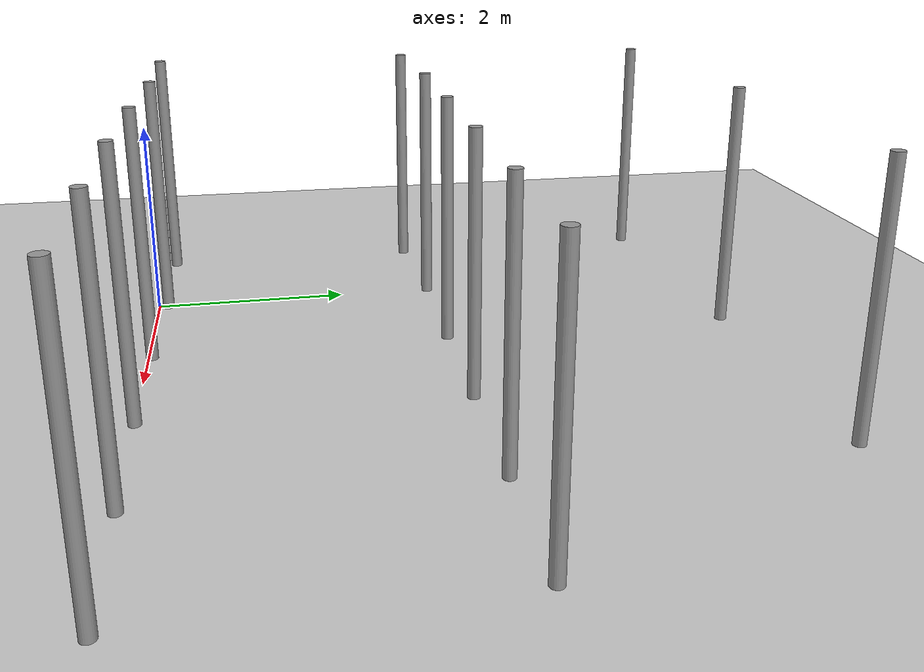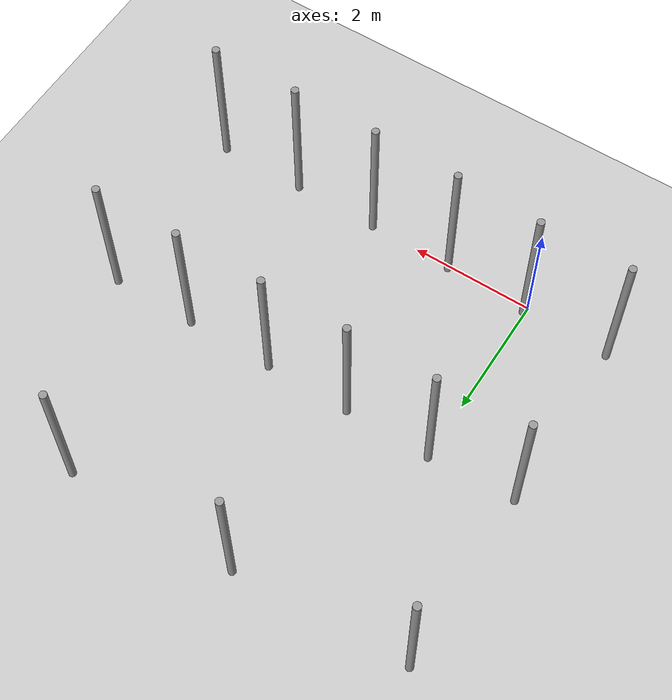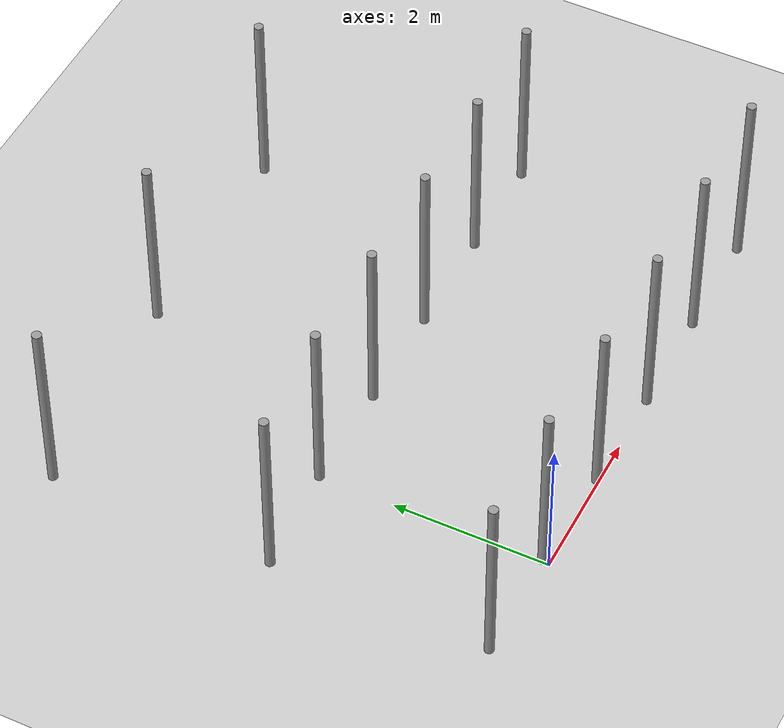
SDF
<sdf version="1.6">
 <world name="default">
  <model name="ground_plane">
   <static>1</static>
   <link name="link">
    <collision name="collision">
     <geometry><plane><normal>0 0 1</normal><size>100 100</size></plane></geometry>
     <surface><friction><ode><mu>100</mu><mu2>50</mu2></ode></friction></surface>
    </collision>
    <visual name="visual">
     <cast_shadows>0</cast_shadows>
     <geometry><plane><normal>0 0 1</normal><size>100 100</size></plane></geometry>
     <material>
      <script><uri>file://media/materials/scripts/gazebo.material</uri><name>Gazebo/Grey</name></script>
     </material>
    </visual>
   </link>
  </model>
  <model name="pole_8">
   <link name="link_0">
    <inertial>
     <mass>0.0364582</mass>
     <inertia>
      <ixx>0.00312124</ixx>
      <ixy>0</ixy>
      <ixz>0</ixz>
      <iyy>0.00312124</iyy>
      <iyz>0</iyz>
      <izz>0.00016615</izz>
     </inertia>
    </inertial>
    <visual name="visual">
     <geometry><cylinder><radius>0.06</radius><length>2.5</length></cylinder></geometry>
     <material>
      <lighting>1</lighting>
      <script><uri>file://media/materials/scripts/gazebo.material</uri><name>Gazebo/Grey</name></script>
      <ambient>0.3 0.3 0.3 1</ambient>
      <diffuse>0.7 0.7 0.7 1</diffuse>
      <specular>0.01 0.01 0.01 1</specular>
      <emissive>0 0 0 1</emissive>
      <shader type="vertex"><normal_map>__default__</normal_map></shader>
     </material>
    </visual>
    <collision name="collision">
     <geometry><cylinder><radius>0.06</radius><length>2.5</length></cylinder></geometry>
     <surface>
      <friction>
       <ode><mu>1</mu><mu2>1</mu2><fdir1>0 0 0</fdir1><slip1>0</slip1><slip2>0</slip2></ode>
       <torsional>
        <coefficient>1</coefficient>
        <patch_radius>0</patch_radius>
        <surface_radius>0</surface_radius>
        <use_patch_radius>1</use_patch_radius>
        <ode><slip>0</slip></ode>
       </torsional>
      </friction>
      <bounce><restitution_coefficient>0</restitution_coefficient><threshold>1e+06</threshold></bounce>
      <contact>
       <collide_without_contact>0</collide_without_contact>
       <collide_without_contact_bitmask>1</collide_without_contact_bitmask>
       <collide_bitmask>1</collide_bitmask>
       <ode>
        <soft_cfm>0</soft_cfm>
        <soft_erp>0.2</soft_erp>
        <kp>1e+13</kp>
        <kd>1</kd>
        <max_vel>0.01</max_vel>
        <min_depth>0</min_depth>
       </ode>
       <bullet>
        <split_impulse>1</split_impulse>
        <split_impulse_penetration_threshold>-0.01</split_impulse_penetration_threshold>
        <soft_cfm>0</soft_cfm>
        <soft_erp>0.2</soft_erp>
        <kp>1e+13</kp>
        <kd>1</kd>
       </bullet>
      </contact>
     </surface>
    </collision>
   </link>
   <static>0</static>
   <pose>1.40879 0.036092 1.24999 1e-06 -3e-06 -0.062165</pose>
  </model>
  <model name="pole_9">
   <link name="link_0">
    <inertial>
     <mass>0.0364582</mass>
     <inertia>
      <ixx>0.00312124</ixx>
      <ixy>0</ixy>
      <ixz>0</ixz>
      <iyy>0.00312124</iyy>
      <iyz>0</iyz>
      <izz>0.00016615</izz>
     </inertia>
    </inertial>
    <visual name="visual">
     <geometry><cylinder><radius>0.06</radius><length>2.5</length></cylinder></geometry>
     <material>
      <lighting>1</lighting>
      <script><uri>file://media/materials/scripts/gazebo.material</uri><name>Gazebo/Grey</name></script>
      <ambient>0.3 0.3 0.3 1</ambient>
      <diffuse>0.7 0.7 0.7 1</diffuse>
      <specular>0.01 0.01 0.01 1</specular>
      <emissive>0 0 0 1</emissive>
      <shader type="vertex"><normal_map>__default__</normal_map></shader>
     </material>
    </visual>
    <collision name="collision">
     <geometry><cylinder><radius>0.06</radius><length>2.5</length></cylinder></geometry>
     <surface>
      <friction>
       <ode><mu>1</mu><mu2>1</mu2><fdir1>0 0 0</fdir1><slip1>0</slip1><slip2>0</slip2></ode>
       <torsional>
        <coefficient>1</coefficient>
        <patch_radius>0</patch_radius>
        <surface_radius>0</surface_radius>
        <use_patch_radius>1</use_patch_radius>
        <ode><slip>0</slip></ode>
       </torsional>
      </friction>
      <bounce><restitution_coefficient>0</restitution_coefficient><threshold>1e+06</threshold></bounce>
      <contact>
       <collide_without_contact>0</collide_without_contact>
       <collide_without_contact_bitmask>1</collide_without_contact_bitmask>
       <collide_bitmask>1</collide_bitmask>
       <ode>
        <soft_cfm>0</soft_cfm>
        <soft_erp>0.2</soft_erp>
        <kp>1e+13</kp>
        <kd>1</kd>
        <max_vel>0.01</max_vel>
        <min_depth>0</min_depth>
       </ode>
       <bullet>
        <split_impulse>1</split_impulse>
        <split_impulse_penetration_threshold>-0.01</split_impulse_penetration_threshold>
        <soft_cfm>0</soft_cfm>
        <soft_erp>0.2</soft_erp>
        <kp>1e+13</kp>
        <kd>1</kd>
       </bullet>
      </contact>
     </surface>
    </collision>
   </link>
   <static>0</static>
   <pose>2.80864 0.005801 1.25 -1e-06 1e-06 -0.08446</pose>
  </model>
  <model name="pole_10">
   <link name="link_0">
    <inertial>
     <mass>0.0364582</mass>
     <inertia>
      <ixx>0.00312124</ixx>
      <ixy>0</ixy>
      <ixz>0</ixz>
      <iyy>0.00312124</iyy>
      <iyz>0</iyz>
      <izz>0.00016615</izz>
     </inertia>
    </inertial>
    <visual name="visual">
     <geometry><cylinder><radius>0.06</radius><length>2.5</length></cylinder></geometry>
     <material>
      <lighting>1</lighting>
      <script><uri>file://media/materials/scripts/gazebo.material</uri><name>Gazebo/Grey</name></script>
      <ambient>0.3 0.3 0.3 1</ambient>
      <diffuse>0.7 0.7 0.7 1</diffuse>
      <specular>0.01 0.01 0.01 1</specular>
      <emissive>0 0 0 1</emissive>
      <shader type="vertex"><normal_map>__default__</normal_map></shader>
     </material>
    </visual>
    <collision name="collision">
     <geometry><cylinder><radius>0.06</radius><length>2.5</length></cylinder></geometry>
     <surface>
      <friction>
       <ode><mu>1</mu><mu2>1</mu2><fdir1>0 0 0</fdir1><slip1>0</slip1><slip2>0</slip2></ode>
       <torsional>
        <coefficient>1</coefficient>
        <patch_radius>0</patch_radius>
        <surface_radius>0</surface_radius>
        <use_patch_radius>1</use_patch_radius>
        <ode><slip>0</slip></ode>
       </torsional>
      </friction>
      <bounce><restitution_coefficient>0</restitution_coefficient><threshold>1e+06</threshold></bounce>
      <contact>
       <collide_without_contact>0</collide_without_contact>
       <collide_without_contact_bitmask>1</collide_without_contact_bitmask>
       <collide_bitmask>1</collide_bitmask>
       <ode>
        <soft_cfm>0</soft_cfm>
        <soft_erp>0.2</soft_erp>
        <kp>1e+13</kp>
        <kd>1</kd>
        <max_vel>0.01</max_vel>
        <min_depth>0</min_depth>
       </ode>
       <bullet>
        <split_impulse>1</split_impulse>
        <split_impulse_penetration_threshold>-0.01</split_impulse_penetration_threshold>
        <soft_cfm>0</soft_cfm>
        <soft_erp>0.2</soft_erp>
        <kp>1e+13</kp>
        <kd>1</kd>
       </bullet>
      </contact>
     </surface>
    </collision>
   </link>
   <static>0</static>
   <pose>4.20447 0.005369 1.25 -0 -1e-06 -0.061855</pose>
  </model>
  <model name="pole_11">
   <link name="link_0">
    <inertial>
     <mass>0.0364582</mass>
     <inertia>
      <ixx>0.00312124</ixx>
      <ixy>0</ixy>
      <ixz>0</ixz>
      <iyy>0.00312124</iyy>
      <iyz>0</iyz>
      <izz>0.00016615</izz>
     </inertia>
    </inertial>
    <visual name="visual">
     <geometry><cylinder><radius>0.06</radius><length>2.5</length></cylinder></geometry>
     <material>
      <lighting>1</lighting>
      <script><uri>file://media/materials/scripts/gazebo.material</uri><name>Gazebo/Grey</name></script>
      <ambient>0.3 0.3 0.3 1</ambient>
      <diffuse>0.7 0.7 0.7 1</diffuse>
      <specular>0.01 0.01 0.01 1</specular>
      <emissive>0 0 0 1</emissive>
      <shader type="vertex"><normal_map>__default__</normal_map></shader>
     </material>
    </visual>
    <collision name="collision">
     <geometry><cylinder><radius>0.06</radius><length>2.5</length></cylinder></geometry>
     <surface>
      <friction>
       <ode><mu>1</mu><mu2>1</mu2><fdir1>0 0 0</fdir1><slip1>0</slip1><slip2>0</slip2></ode>
       <torsional>
        <coefficient>1</coefficient>
        <patch_radius>0</patch_radius>
        <surface_radius>0</surface_radius>
        <use_patch_radius>1</use_patch_radius>
        <ode><slip>0</slip></ode>
       </torsional>
      </friction>
      <bounce><restitution_coefficient>0</restitution_coefficient><threshold>1e+06</threshold></bounce>
      <contact>
       <collide_without_contact>0</collide_without_contact>
       <collide_without_contact_bitmask>1</collide_without_contact_bitmask>
       <collide_bitmask>1</collide_bitmask>
       <ode>
        <soft_cfm>0</soft_cfm>
        <soft_erp>0.2</soft_erp>
        <kp>1e+13</kp>
        <kd>1</kd>
        <max_vel>0.01</max_vel>
        <min_depth>0</min_depth>
       </ode>
       <bullet>
        <split_impulse>1</split_impulse>
        <split_impulse_penetration_threshold>-0.01</split_impulse_penetration_threshold>
        <soft_cfm>0</soft_cfm>
        <soft_erp>0.2</soft_erp>
        <kp>1e+13</kp>
        <kd>1</kd>
       </bullet>
      </contact>
     </surface>
    </collision>
   </link>
   <static>0</static>
   <pose>5.61686 0.005453 1.24999 0 0 -0.070687</pose>
  </model>
  <model name="pole_11_clone">
   <link name="link_0">
    <inertial>
     <mass>0.0364582</mass>
     <inertia>
      <ixx>0.00312124</ixx>
      <ixy>0</ixy>
      <ixz>0</ixz>
      <iyy>0.00312124</iyy>
      <iyz>0</iyz>
      <izz>0.00016615</izz>
     </inertia>
    </inertial>
    <visual name="visual">
     <geometry><cylinder><radius>0.06</radius><length>2.5</length></cylinder></geometry>
     <material>
      <lighting>1</lighting>
      <script><uri>file://media/materials/scripts/gazebo.material</uri><name>Gazebo/Grey</name></script>
      <ambient>0.3 0.3 0.3 1</ambient>
      <diffuse>0.7 0.7 0.7 1</diffuse>
      <specular>0.01 0.01 0.01 1</specular>
      <emissive>0 0 0 1</emissive>
      <shader type="vertex"><normal_map>__default__</normal_map></shader>
     </material>
    </visual>
    <collision name="collision">
     <geometry><cylinder><radius>0.06</radius><length>2.5</length></cylinder></geometry>
     <surface>
      <friction>
       <ode><mu>1</mu><mu2>1</mu2><fdir1>0 0 0</fdir1><slip1>0</slip1><slip2>0</slip2></ode>
       <torsional>
        <coefficient>1</coefficient>
        <patch_radius>0</patch_radius>
        <surface_radius>0</surface_radius>
        <use_patch_radius>1</use_patch_radius>
        <ode><slip>0</slip></ode>
       </torsional>
      </friction>
      <bounce><restitution_coefficient>0</restitution_coefficient><threshold>1e+06</threshold></bounce>
      <contact>
       <collide_without_contact>0</collide_without_contact>
       <collide_without_contact_bitmask>1</collide_without_contact_bitmask>
       <collide_bitmask>1</collide_bitmask>
       <ode>
        <soft_cfm>0</soft_cfm>
        <soft_erp>0.2</soft_erp>
        <kp>1e+13</kp>
        <kd>1</kd>
        <max_vel>0.01</max_vel>
        <min_depth>0</min_depth>
       </ode>
       <bullet>
        <split_impulse>1</split_impulse>
        <split_impulse_penetration_threshold>-0.01</split_impulse_penetration_threshold>
        <soft_cfm>0</soft_cfm>
        <soft_erp>0.2</soft_erp>
        <kp>1e+13</kp>
        <kd>1</kd>
       </bullet>
      </contact>
     </surface>
    </collision>
   </link>
   <static>0</static>
   <pose>0.001297 2.98765 1.25 0 1e-06 -0.073133</pose>
  </model>
  <model name="pole_2">
   <link name="link_0">
    <inertial>
     <mass>0.0364582</mass>
     <inertia>
      <ixx>0.00312124</ixx>
      <ixy>0</ixy>
      <ixz>0</ixz>
      <iyy>0.00312124</iyy>
      <iyz>0</iyz>
      <izz>0.00016615</izz>
     </inertia>
    </inertial>
    <visual name="visual">
     <geometry><cylinder><radius>0.06</radius><length>2.5</length></cylinder></geometry>
     <material>
      <lighting>1</lighting>
      <script><uri>file://media/materials/scripts/gazebo.material</uri><name>Gazebo/Grey</name></script>
      <ambient>0.3 0.3 0.3 1</ambient>
      <diffuse>0.7 0.7 0.7 1</diffuse>
      <specular>0.01 0.01 0.01 1</specular>
      <emissive>0 0 0 1</emissive>
      <shader type="vertex"><normal_map>__default__</normal_map></shader>
     </material>
    </visual>
    <collision name="collision">
     <geometry><cylinder><radius>0.06</radius><length>2.5</length></cylinder></geometry>
     <surface>
      <friction>
       <ode><mu>1</mu><mu2>1</mu2><fdir1>0 0 0</fdir1><slip1>0</slip1><slip2>0</slip2></ode>
       <torsional>
        <coefficient>1</coefficient>
        <patch_radius>0</patch_radius>
        <surface_radius>0</surface_radius>
        <use_patch_radius>1</use_patch_radius>
        <ode><slip>0</slip></ode>
       </torsional>
      </friction>
      <bounce><restitution_coefficient>0</restitution_coefficient><threshold>1e+06</threshold></bounce>
      <contact>
       <collide_without_contact>0</collide_without_contact>
       <collide_without_contact_bitmask>1</collide_without_contact_bitmask>
       <collide_bitmask>1</collide_bitmask>
       <ode>
        <soft_cfm>0</soft_cfm>
        <soft_erp>0.2</soft_erp>
        <kp>1e+13</kp>
        <kd>1</kd>
        <max_vel>0.01</max_vel>
        <min_depth>0</min_depth>
       </ode>
       <bullet>
        <split_impulse>1</split_impulse>
        <split_impulse_penetration_threshold>-0.01</split_impulse_penetration_threshold>
        <soft_cfm>0</soft_cfm>
        <soft_erp>0.2</soft_erp>
        <kp>1e+13</kp>
        <kd>1</kd>
       </bullet>
      </contact>
     </surface>
    </collision>
   </link>
   <static>0</static>
   <pose>0.034803 0.098134 1.25 0 2e-06 0.003122</pose>
  </model>
  <model name="pole_3">
   <link name="link_0">
    <inertial>
     <mass>0.0364582</mass>
     <inertia>
      <ixx>0.00312124</ixx>
      <ixy>0</ixy>
      <ixz>0</ixz>
      <iyy>0.00312124</iyy>
      <iyz>0</iyz>
      <izz>0.00016615</izz>
     </inertia>
    </inertial>
    <visual name="visual">
     <geometry><cylinder><radius>0.06</radius><length>2.5</length></cylinder></geometry>
     <material>
      <lighting>1</lighting>
      <script><uri>file://media/materials/scripts/gazebo.material</uri><name>Gazebo/Grey</name></script>
      <ambient>0.3 0.3 0.3 1</ambient>
      <diffuse>0.7 0.7 0.7 1</diffuse>
      <specular>0.01 0.01 0.01 1</specular>
      <emissive>0 0 0 1</emissive>
      <shader type="vertex"><normal_map>__default__</normal_map></shader>
     </material>
    </visual>
    <collision name="collision">
     <geometry><cylinder><radius>0.06</radius><length>2.5</length></cylinder></geometry>
     <surface>
      <friction>
       <ode><mu>1</mu><mu2>1</mu2><fdir1>0 0 0</fdir1><slip1>0</slip1><slip2>0</slip2></ode>
       <torsional>
        <coefficient>1</coefficient>
        <patch_radius>0</patch_radius>
        <surface_radius>0</surface_radius>
        <use_patch_radius>1</use_patch_radius>
        <ode><slip>0</slip></ode>
       </torsional>
      </friction>
      <bounce><restitution_coefficient>0</restitution_coefficient><threshold>1e+06</threshold></bounce>
      <contact>
       <collide_without_contact>0</collide_without_contact>
       <collide_without_contact_bitmask>1</collide_without_contact_bitmask>
       <collide_bitmask>1</collide_bitmask>
       <ode>
        <soft_cfm>0</soft_cfm>
        <soft_erp>0.2</soft_erp>
        <kp>1e+13</kp>
        <kd>1</kd>
        <max_vel>0.01</max_vel>
        <min_depth>0</min_depth>
       </ode>
       <bullet>
        <split_impulse>1</split_impulse>
        <split_impulse_penetration_threshold>-0.01</split_impulse_penetration_threshold>
        <soft_cfm>0</soft_cfm>
        <soft_erp>0.2</soft_erp>
        <kp>1e+13</kp>
        <kd>1</kd>
       </bullet>
      </contact>
     </surface>
    </collision>
   </link>
   <static>0</static>
   <pose>1.40528 2.98526 1.25 -1e-06 -0 -0.058774</pose>
  </model>
  <model name="pole_5">
   <link name="link_0">
    <inertial>
     <mass>0.0364582</mass>
     <inertia>
      <ixx>0.00312124</ixx>
      <ixy>0</ixy>
      <ixz>0</ixz>
      <iyy>0.00312124</iyy>
      <iyz>0</iyz>
      <izz>0.00016615</izz>
     </inertia>
    </inertial>
    <visual name="visual">
     <geometry><cylinder><radius>0.06</radius><length>2.5</length></cylinder></geometry>
     <material>
      <lighting>1</lighting>
      <script><uri>file://media/materials/scripts/gazebo.material</uri><name>Gazebo/Grey</name></script>
      <ambient>0.3 0.3 0.3 1</ambient>
      <diffuse>0.7 0.7 0.7 1</diffuse>
      <specular>0.01 0.01 0.01 1</specular>
      <emissive>0 0 0 1</emissive>
      <shader type="vertex"><normal_map>__default__</normal_map></shader>
     </material>
    </visual>
    <collision name="collision">
     <geometry><cylinder><radius>0.06</radius><length>2.5</length></cylinder></geometry>
     <surface>
      <friction>
       <ode><mu>1</mu><mu2>1</mu2><fdir1>0 0 0</fdir1><slip1>0</slip1><slip2>0</slip2></ode>
       <torsional>
        <coefficient>1</coefficient>
        <patch_radius>0</patch_radius>
        <surface_radius>0</surface_radius>
        <use_patch_radius>1</use_patch_radius>
        <ode><slip>0</slip></ode>
       </torsional>
      </friction>
      <bounce><restitution_coefficient>0</restitution_coefficient><threshold>1e+06</threshold></bounce>
      <contact>
       <collide_without_contact>0</collide_without_contact>
       <collide_without_contact_bitmask>1</collide_without_contact_bitmask>
       <collide_bitmask>1</collide_bitmask>
       <ode>
        <soft_cfm>0</soft_cfm>
        <soft_erp>0.2</soft_erp>
        <kp>1e+13</kp>
        <kd>1</kd>
        <max_vel>0.01</max_vel>
        <min_depth>0</min_depth>
       </ode>
       <bullet>
        <split_impulse>1</split_impulse>
        <split_impulse_penetration_threshold>-0.01</split_impulse_penetration_threshold>
        <soft_cfm>0</soft_cfm>
        <soft_erp>0.2</soft_erp>
        <kp>1e+13</kp>
        <kd>1</kd>
       </bullet>
      </contact>
     </surface>
    </collision>
   </link>
   <static>0</static>
   <pose>2.79633 2.98472 1.24999 0 -1e-06 -0.053826</pose>
  </model>
  <model name="pole_6">
   <link name="link_0">
    <inertial>
     <mass>0.0364582</mass>
     <inertia>
      <ixx>0.00312124</ixx>
      <ixy>0</ixy>
      <ixz>0</ixz>
      <iyy>0.00312124</iyy>
      <iyz>0</iyz>
      <izz>0.00016615</izz>
     </inertia>
    </inertial>
    <visual name="visual">
     <geometry><cylinder><radius>0.06</radius><length>2.5</length></cylinder></geometry>
     <material>
      <lighting>1</lighting>
      <script><uri>file://media/materials/scripts/gazebo.material</uri><name>Gazebo/Grey</name></script>
      <ambient>0.3 0.3 0.3 1</ambient>
      <diffuse>0.7 0.7 0.7 1</diffuse>
      <specular>0.01 0.01 0.01 1</specular>
      <emissive>0 0 0 1</emissive>
      <shader type="vertex"><normal_map>__default__</normal_map></shader>
     </material>
    </visual>
    <collision name="collision">
     <geometry><cylinder><radius>0.06</radius><length>2.5</length></cylinder></geometry>
     <surface>
      <friction>
       <ode><mu>1</mu><mu2>1</mu2><fdir1>0 0 0</fdir1><slip1>0</slip1><slip2>0</slip2></ode>
       <torsional>
        <coefficient>1</coefficient>
        <patch_radius>0</patch_radius>
        <surface_radius>0</surface_radius>
        <use_patch_radius>1</use_patch_radius>
        <ode><slip>0</slip></ode>
       </torsional>
      </friction>
      <bounce><restitution_coefficient>0</restitution_coefficient><threshold>1e+06</threshold></bounce>
      <contact>
       <collide_without_contact>0</collide_without_contact>
       <collide_without_contact_bitmask>1</collide_without_contact_bitmask>
       <collide_bitmask>1</collide_bitmask>
       <ode>
        <soft_cfm>0</soft_cfm>
        <soft_erp>0.2</soft_erp>
        <kp>1e+13</kp>
        <kd>1</kd>
        <max_vel>0.01</max_vel>
        <min_depth>0</min_depth>
       </ode>
       <bullet>
        <split_impulse>1</split_impulse>
        <split_impulse_penetration_threshold>-0.01</split_impulse_penetration_threshold>
        <soft_cfm>0</soft_cfm>
        <soft_erp>0.2</soft_erp>
        <kp>1e+13</kp>
        <kd>1</kd>
       </bullet>
      </contact>
     </surface>
    </collision>
   </link>
   <static>0</static>
   <pose>4.22295 2.98489 1.25 -0 1e-06 -0.055061</pose>
  </model>
  <model name="pole_7">
   <link name="link_0">
    <inertial>
     <mass>0.0364582</mass>
     <inertia>
      <ixx>0.00312124</ixx>
      <ixy>0</ixy>
      <ixz>0</ixz>
      <iyy>0.00312124</iyy>
      <iyz>0</iyz>
      <izz>0.00016615</izz>
     </inertia>
    </inertial>
    <visual name="visual">
     <geometry><cylinder><radius>0.06</radius><length>2.5</length></cylinder></geometry>
     <material>
      <lighting>1</lighting>
      <script><uri>file://media/materials/scripts/gazebo.material</uri><name>Gazebo/Grey</name></script>
      <ambient>0.3 0.3 0.3 1</ambient>
      <diffuse>0.7 0.7 0.7 1</diffuse>
      <specular>0.01 0.01 0.01 1</specular>
      <emissive>0 0 0 1</emissive>
      <shader type="vertex"><normal_map>__default__</normal_map></shader>
     </material>
    </visual>
    <collision name="collision">
     <geometry><cylinder><radius>0.06</radius><length>2.5</length></cylinder></geometry>
     <surface>
      <friction>
       <ode><mu>1</mu><mu2>1</mu2><fdir1>0 0 0</fdir1><slip1>0</slip1><slip2>0</slip2></ode>
       <torsional>
        <coefficient>1</coefficient>
        <patch_radius>0</patch_radius>
        <surface_radius>0</surface_radius>
        <use_patch_radius>1</use_patch_radius>
        <ode><slip>0</slip></ode>
       </torsional>
      </friction>
      <bounce><restitution_coefficient>0</restitution_coefficient><threshold>1e+06</threshold></bounce>
      <contact>
       <collide_without_contact>0</collide_without_contact>
       <collide_without_contact_bitmask>1</collide_without_contact_bitmask>
       <collide_bitmask>1</collide_bitmask>
       <ode>
        <soft_cfm>0</soft_cfm>
        <soft_erp>0.2</soft_erp>
        <kp>1e+13</kp>
        <kd>1</kd>
        <max_vel>0.01</max_vel>
        <min_depth>0</min_depth>
       </ode>
       <bullet>
        <split_impulse>1</split_impulse>
        <split_impulse_penetration_threshold>-0.01</split_impulse_penetration_threshold>
        <soft_cfm>0</soft_cfm>
        <soft_erp>0.2</soft_erp>
        <kp>1e+13</kp>
        <kd>1</kd>
       </bullet>
      </contact>
     </surface>
    </collision>
   </link>
   <static>0</static>
   <pose>5.60791 2.98497 1.24999 0 0 -0.056686</pose>
  </model>
  <model name="pole_12">
   <link name="link_0">
    <inertial>
     <mass>0.0364582</mass>
     <inertia>
      <ixx>0.00312124</ixx>
      <ixy>0</ixy>
      <ixz>0</ixz>
      <iyy>0.00312124</iyy>
      <iyz>0</iyz>
      <izz>0.00016615</izz>
     </inertia>
    </inertial>
    <visual name="visual">
     <geometry><cylinder><radius>0.06</radius><length>2.5</length></cylinder></geometry>
     <material>
      <lighting>1</lighting>
      <script><uri>file://media/materials/scripts/gazebo.material</uri><name>Gazebo/Grey</name></script>
      <ambient>0.3 0.3 0.3 1</ambient>
      <diffuse>0.7 0.7 0.7 1</diffuse>
      <specular>0.01 0.01 0.01 1</specular>
      <emissive>0 0 0 1</emissive>
      <shader type="vertex"><normal_map>__default__</normal_map></shader>
     </material>
    </visual>
    <collision name="collision">
     <geometry><cylinder><radius>0.06</radius><length>2.5</length></cylinder></geometry>
     <surface>
      <friction>
       <ode><mu>1</mu><mu2>1</mu2><fdir1>0 0 0</fdir1><slip1>0</slip1><slip2>0</slip2></ode>
       <torsional>
        <coefficient>1</coefficient>
        <patch_radius>0</patch_radius>
        <surface_radius>0</surface_radius>
        <use_patch_radius>1</use_patch_radius>
        <ode><slip>0</slip></ode>
       </torsional>
      </friction>
      <bounce><restitution_coefficient>0</restitution_coefficient><threshold>1e+06</threshold></bounce>
      <contact>
       <collide_without_contact>0</collide_without_contact>
       <collide_without_contact_bitmask>1</collide_without_contact_bitmask>
       <collide_bitmask>1</collide_bitmask>
       <ode>
        <soft_cfm>0</soft_cfm>
        <soft_erp>0.2</soft_erp>
        <kp>1e+13</kp>
        <kd>1</kd>
        <max_vel>0.01</max_vel>
        <min_depth>0</min_depth>
       </ode>
       <bullet>
        <split_impulse>1</split_impulse>
        <split_impulse_penetration_threshold>-0.01</split_impulse_penetration_threshold>
        <soft_cfm>0</soft_cfm>
        <soft_erp>0.2</soft_erp>
        <kp>1e+13</kp>
        <kd>1</kd>
       </bullet>
      </contact>
     </surface>
    </collision>
   </link>
   <static>0</static>
   <pose>1.41418 5.96502 1.24999 -0 1e-06 -0.0547</pose>
  </model>
  <model name="pole_14">
   <link name="link_0">
    <inertial>
     <mass>0.0364582</mass>
     <inertia>
      <ixx>0.00312124</ixx>
      <ixy>0</ixy>
      <ixz>0</ixz>
      <iyy>0.00312124</iyy>
      <iyz>0</iyz>
      <izz>0.00016615</izz>
     </inertia>
    </inertial>
    <visual name="visual">
     <geometry><cylinder><radius>0.06</radius><length>2.5</length></cylinder></geometry>
     <material>
      <lighting>1</lighting>
      <script><uri>file://media/materials/scripts/gazebo.material</uri><name>Gazebo/Grey</name></script>
      <ambient>0.3 0.3 0.3 1</ambient>
      <diffuse>0.7 0.7 0.7 1</diffuse>
      <specular>0.01 0.01 0.01 1</specular>
      <emissive>0 0 0 1</emissive>
      <shader type="vertex"><normal_map>__default__</normal_map></shader>
     </material>
    </visual>
    <collision name="collision">
     <geometry><cylinder><radius>0.06</radius><length>2.5</length></cylinder></geometry>
     <surface>
      <friction>
       <ode><mu>1</mu><mu2>1</mu2><fdir1>0 0 0</fdir1><slip1>0</slip1><slip2>0</slip2></ode>
       <torsional>
        <coefficient>1</coefficient>
        <patch_radius>0</patch_radius>
        <surface_radius>0</surface_radius>
        <use_patch_radius>1</use_patch_radius>
        <ode><slip>0</slip></ode>
       </torsional>
      </friction>
      <bounce><restitution_coefficient>0</restitution_coefficient><threshold>1e+06</threshold></bounce>
      <contact>
       <collide_without_contact>0</collide_without_contact>
       <collide_without_contact_bitmask>1</collide_without_contact_bitmask>
       <collide_bitmask>1</collide_bitmask>
       <ode>
        <soft_cfm>0</soft_cfm>
        <soft_erp>0.2</soft_erp>
        <kp>1e+13</kp>
        <kd>1</kd>
        <max_vel>0.01</max_vel>
        <min_depth>0</min_depth>
       </ode>
       <bullet>
        <split_impulse>1</split_impulse>
        <split_impulse_penetration_threshold>-0.01</split_impulse_penetration_threshold>
        <soft_cfm>0</soft_cfm>
        <soft_erp>0.2</soft_erp>
        <kp>1e+13</kp>
        <kd>1</kd>
       </bullet>
      </contact>
     </surface>
    </collision>
   </link>
   <static>0</static>
   <pose>4.22007 5.96473 1.24999 -1e-06 1e-06 -0.05686</pose>
  </model>
  <model name="pole_2_clone">
   <link name="link_0">
    <inertial>
     <mass>0.0364582</mass>
     <inertia>
      <ixx>0.00312124</ixx>
      <ixy>0</ixy>
      <ixz>0</ixz>
      <iyy>0.00312124</iyy>
      <iyz>0</iyz>
      <izz>0.00016615</izz>
     </inertia>
    </inertial>
    <visual name="visual">
     <geometry><cylinder><radius>0.06</radius><length>2.5</length></cylinder></geometry>
     <material>
      <lighting>1</lighting>
      <script><uri>file://media/materials/scripts/gazebo.material</uri><name>Gazebo/Grey</name></script>
      <ambient>0.3 0.3 0.3 1</ambient>
      <diffuse>0.7 0.7 0.7 1</diffuse>
      <specular>0.01 0.01 0.01 1</specular>
      <emissive>0 0 0 1</emissive>
      <shader type="vertex"><normal_map>__default__</normal_map></shader>
     </material>
    </visual>
    <collision name="collision">
     <geometry><cylinder><radius>0.06</radius><length>2.5</length></cylinder></geometry>
     <surface>
      <friction>
       <ode><mu>1</mu><mu2>1</mu2><fdir1>0 0 0</fdir1><slip1>0</slip1><slip2>0</slip2></ode>
       <torsional>
        <coefficient>1</coefficient>
        <patch_radius>0</patch_radius>
        <surface_radius>0</surface_radius>
        <use_patch_radius>1</use_patch_radius>
        <ode><slip>0</slip></ode>
       </torsional>
      </friction>
      <bounce><restitution_coefficient>0</restitution_coefficient><threshold>1e+06</threshold></bounce>
      <contact>
       <collide_without_contact>0</collide_without_contact>
       <collide_without_contact_bitmask>1</collide_without_contact_bitmask>
       <collide_bitmask>1</collide_bitmask>
       <ode>
        <soft_cfm>0</soft_cfm>
        <soft_erp>0.2</soft_erp>
        <kp>1e+13</kp>
        <kd>1</kd>
        <max_vel>0.01</max_vel>
        <min_depth>0</min_depth>
       </ode>
       <bullet>
        <split_impulse>1</split_impulse>
        <split_impulse_penetration_threshold>-0.01</split_impulse_penetration_threshold>
        <soft_cfm>0</soft_cfm>
        <soft_erp>0.2</soft_erp>
        <kp>1e+13</kp>
        <kd>1</kd>
       </bullet>
      </contact>
     </surface>
    </collision>
   </link>
   <static>0</static>
   <pose>-1.39937 0.096129 1.25 -0 1e-06 -0.000817</pose>
  </model>
  <model name="pole_2_clone_0">
   <link name="link_0">
    <inertial>
     <mass>0.0364582</mass>
     <inertia>
      <ixx>0.00312124</ixx>
      <ixy>0</ixy>
      <ixz>0</ixz>
      <iyy>0.00312124</iyy>
      <iyz>0</iyz>
      <izz>0.00016615</izz>
     </inertia>
    </inertial>
    <visual name="visual">
     <geometry><cylinder><radius>0.06</radius><length>2.5</length></cylinder></geometry>
     <material>
      <lighting>1</lighting>
      <script><uri>file://media/materials/scripts/gazebo.material</uri><name>Gazebo/Grey</name></script>
      <ambient>0.3 0.3 0.3 1</ambient>
      <diffuse>0.7 0.7 0.7 1</diffuse>
      <specular>0.01 0.01 0.01 1</specular>
      <emissive>0 0 0 1</emissive>
      <shader type="vertex"><normal_map>__default__</normal_map></shader>
     </material>
    </visual>
    <collision name="collision">
     <geometry><cylinder><radius>0.06</radius><length>2.5</length></cylinder></geometry>
     <surface>
      <friction>
       <ode><mu>1</mu><mu2>1</mu2><fdir1>0 0 0</fdir1><slip1>0</slip1><slip2>0</slip2></ode>
       <torsional>
        <coefficient>1</coefficient>
        <patch_radius>0</patch_radius>
        <surface_radius>0</surface_radius>
        <use_patch_radius>1</use_patch_radius>
        <ode><slip>0</slip></ode>
       </torsional>
      </friction>
      <bounce><restitution_coefficient>0</restitution_coefficient><threshold>1e+06</threshold></bounce>
      <contact>
       <collide_without_contact>0</collide_without_contact>
       <collide_without_contact_bitmask>1</collide_without_contact_bitmask>
       <collide_bitmask>1</collide_bitmask>
       <ode>
        <soft_cfm>0</soft_cfm>
        <soft_erp>0.2</soft_erp>
        <kp>1e+13</kp>
        <kd>1</kd>
        <max_vel>0.01</max_vel>
        <min_depth>0</min_depth>
       </ode>
       <bullet>
        <split_impulse>1</split_impulse>
        <split_impulse_penetration_threshold>-0.01</split_impulse_penetration_threshold>
        <soft_cfm>0</soft_cfm>
        <soft_erp>0.2</soft_erp>
        <kp>1e+13</kp>
        <kd>1</kd>
       </bullet>
      </contact>
     </surface>
    </collision>
   </link>
   <static>0</static>
   <pose>-1.39942 2.90403 1.24999 0 1e-06 0.002449</pose>
  </model>
  <model name="pole_2_clone_1">
   <link name="link_0">
    <inertial>
     <mass>0.0364582</mass>
     <inertia>
      <ixx>0.00312124</ixx>
      <ixy>0</ixy>
      <ixz>0</ixz>
      <iyy>0.00312124</iyy>
      <iyz>0</iyz>
      <izz>0.00016615</izz>
     </inertia>
    </inertial>
    <visual name="visual">
     <geometry><cylinder><radius>0.06</radius><length>2.5</length></cylinder></geometry>
     <material>
      <lighting>1</lighting>
      <script><uri>file://media/materials/scripts/gazebo.material</uri><name>Gazebo/Grey</name></script>
      <ambient>0.3 0.3 0.3 1</ambient>
      <diffuse>0.7 0.7 0.7 1</diffuse>
      <specular>0.01 0.01 0.01 1</specular>
      <emissive>0 0 0 1</emissive>
      <shader type="vertex"><normal_map>__default__</normal_map></shader>
     </material>
    </visual>
    <collision name="collision">
     <geometry><cylinder><radius>0.06</radius><length>2.5</length></cylinder></geometry>
     <surface>
      <friction>
       <ode><mu>1</mu><mu2>1</mu2><fdir1>0 0 0</fdir1><slip1>0</slip1><slip2>0</slip2></ode>
       <torsional>
        <coefficient>1</coefficient>
        <patch_radius>0</patch_radius>
        <surface_radius>0</surface_radius>
        <use_patch_radius>1</use_patch_radius>
        <ode><slip>0</slip></ode>
       </torsional>
      </friction>
      <bounce><restitution_coefficient>0</restitution_coefficient><threshold>1e+06</threshold></bounce>
      <contact>
       <collide_without_contact>0</collide_without_contact>
       <collide_without_contact_bitmask>1</collide_without_contact_bitmask>
       <collide_bitmask>1</collide_bitmask>
       <ode>
        <soft_cfm>0</soft_cfm>
        <soft_erp>0.2</soft_erp>
        <kp>1e+13</kp>
        <kd>1</kd>
        <max_vel>0.01</max_vel>
        <min_depth>0</min_depth>
       </ode>
       <bullet>
        <split_impulse>1</split_impulse>
        <split_impulse_penetration_threshold>-0.01</split_impulse_penetration_threshold>
        <soft_cfm>0</soft_cfm>
        <soft_erp>0.2</soft_erp>
        <kp>1e+13</kp>
        <kd>1</kd>
       </bullet>
      </contact>
     </surface>
    </collision>
   </link>
   <static>0</static>
   <pose>-1.39946 5.80436 1.24999 -0 1e-06 0.003729</pose>
  </model>
 </world>
</sdf>
